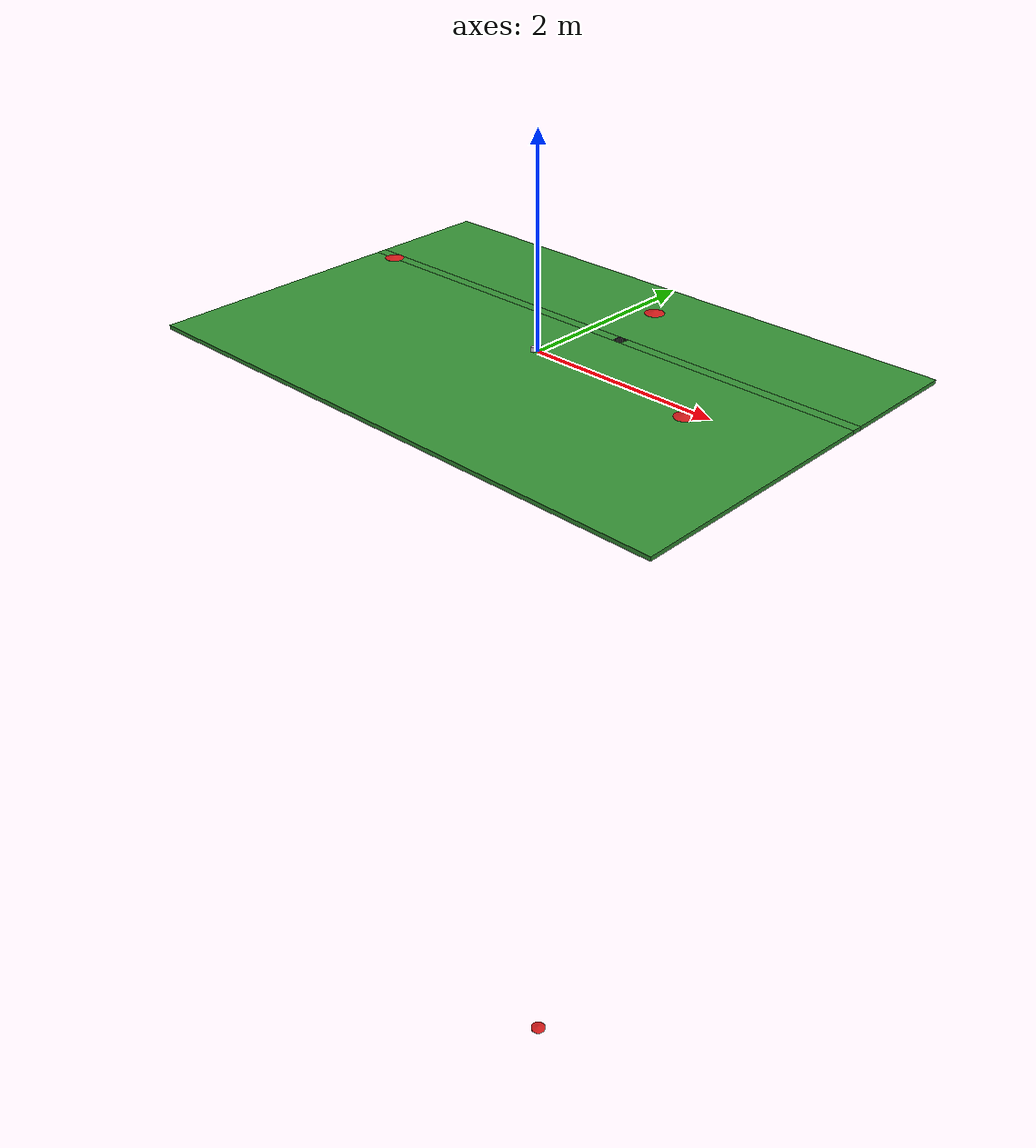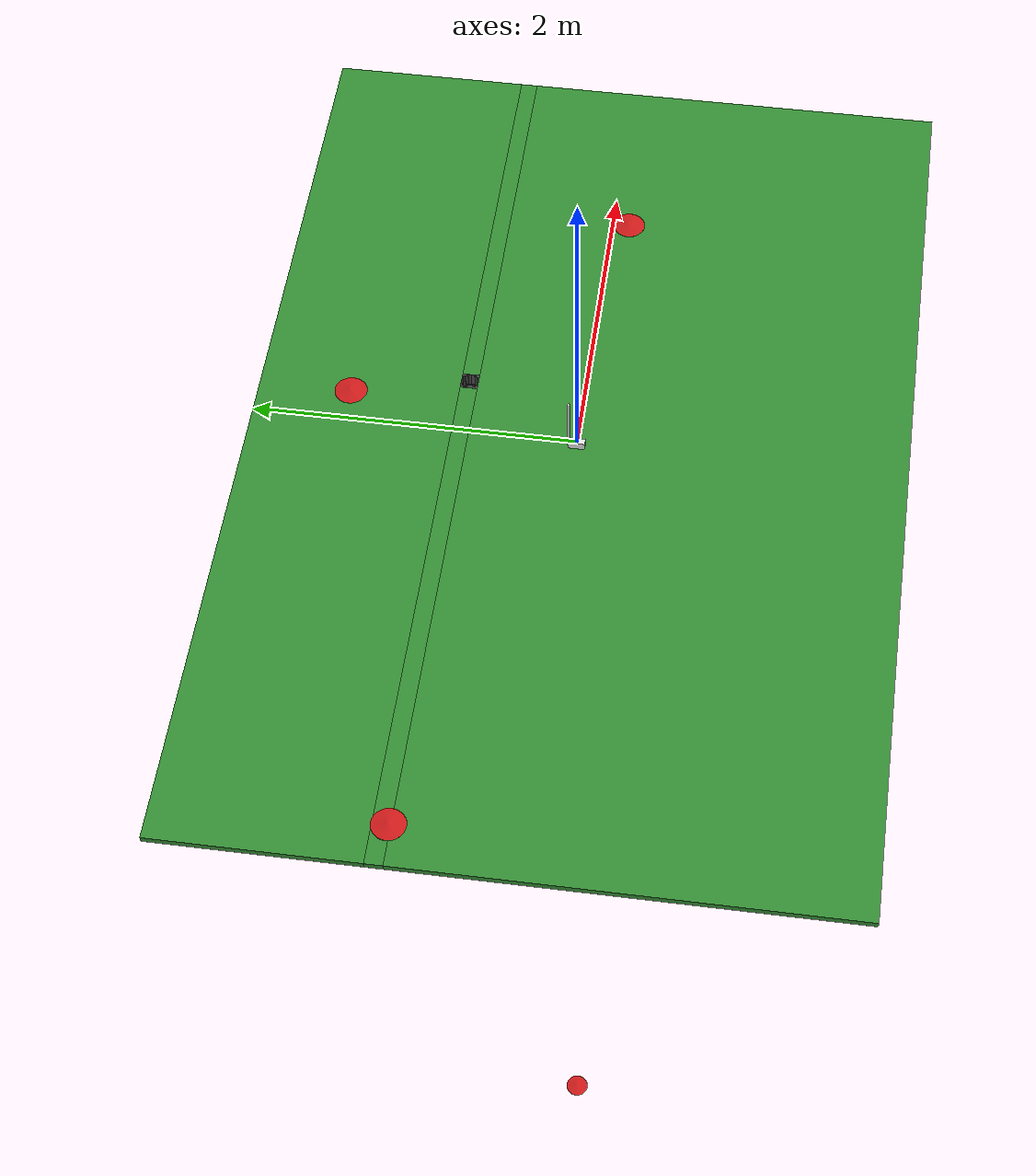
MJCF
<mujoco model="golf_world">
  <compiler angle="radian"/>

  <option integrator="RK4"/>

  <default>
    <geom condim="6" friction="0.2 0.001 0.0014" solref="0.002" solimp="0.95 0.99"/>
  </default>

  <asset>
    <texture type="2d" colorspace="auto" name="checks" builtin="checker" mark="cross" rgb1="1 1 1" rgb2="0 0 0" markrgb="1 0 0" width="512" height="512"/>
    <material name="green_mat" rgba="0.2 0.55 0.2 1"/>
    <material name="green_mat_out" rgba="0.5 0.5 0.5 1"/>
    <material name="green_mat_out1" rgba="0 0.5 0.5 1"/>
    <material name="green_mat_out2" rgba="0.5 0 0.5 1"/>
    <material name="cup_mat" rgba="0.3 0.3 0.3 1"/>
    <material name="ball_mat" texture="checks"/>
    <material name="club_mat" rgba="0.9 0.9 0.9 1"/>
    <material name="disc_mat" rgba="0.8 0.1 0.1 1"/>
    <mesh name="cup_w00" file="assets/golf_hole_obj/golf_hole_obj_collision_0.obj" scale="0.01 0.01 0.01"/>
    <mesh name="cup_w01" file="assets/golf_hole_obj/golf_hole_obj_collision_1.obj" scale="0.01 0.01 0.01"/>
    <mesh name="cup_w02" file="assets/golf_hole_obj/golf_hole_obj_collision_2.obj" scale="0.01 0.01 0.01"/>
    <mesh name="cup_w03" file="assets/golf_hole_obj/golf_hole_obj_collision_3.obj" scale="0.01 0.01 0.01"/>
    <mesh name="cup_w04" file="assets/golf_hole_obj/golf_hole_obj_collision_4.obj" scale="0.01 0.01 0.01"/>
    <mesh name="cup_w05" file="assets/golf_hole_obj/golf_hole_obj_collision_5.obj" scale="0.01 0.01 0.01"/>
    <mesh name="cup_w06" file="assets/golf_hole_obj/golf_hole_obj_collision_6.obj" scale="0.01 0.01 0.01"/>
    <mesh name="cup_w07" file="assets/golf_hole_obj/golf_hole_obj_collision_7.obj" scale="0.01 0.01 0.01"/>
    <mesh name="cup_w08" file="assets/golf_hole_obj/golf_hole_obj_collision_8.obj" scale="0.01 0.01 0.01"/>
    <mesh name="cup_w09" file="assets/golf_hole_obj/golf_hole_obj_collision_9.obj" scale="0.01 0.01 0.01"/>
    <mesh name="cup_w10" file="assets/golf_hole_obj/golf_hole_obj_collision_10.obj" scale="0.01 0.01 0.01"/>
    <mesh name="cup_w11" file="assets/golf_hole_obj/golf_hole_obj_collision_11.obj" scale="0.01 0.01 0.01"/>
    <mesh name="cup_w12" file="assets/golf_hole_obj/golf_hole_obj_collision_12.obj" scale="0.01 0.01 0.01"/>
    <mesh name="cup_w13" file="assets/golf_hole_obj/golf_hole_obj_collision_13.obj" scale="0.01 0.01 0.01"/>
    <mesh name="cup_w14" file="assets/golf_hole_obj/golf_hole_obj_collision_14.obj" scale="0.01 0.01 0.01"/>
    <mesh name="cup_w15" file="assets/golf_hole_obj/golf_hole_obj_collision_15.obj" scale="0.01 0.01 0.01"/>
    <mesh name="cup_w16" file="assets/golf_hole_obj/golf_hole_obj_collision_16.obj" scale="0.01 0.01 0.01"/>
    <mesh name="cup_w17" file="assets/golf_hole_obj/golf_hole_obj_collision_17.obj" scale="0.01 0.01 0.01"/>
    <mesh name="cup_w18" file="assets/golf_hole_obj/golf_hole_obj_collision_18.obj" scale="0.01 0.01 0.01"/>
    <mesh name="cup_w19" file="assets/golf_hole_obj/golf_hole_obj_collision_19.obj" scale="0.01 0.01 0.01"/>
    <mesh name="cup_w20" file="assets/golf_hole_obj/golf_hole_obj_collision_20.obj" scale="0.01 0.01 0.01"/>
    <mesh name="cup_w21" file="assets/golf_hole_obj/golf_hole_obj_collision_21.obj" scale="0.01 0.01 0.01"/>
    <mesh name="cup_w22" file="assets/golf_hole_obj/golf_hole_obj_collision_22.obj" scale="0.01 0.01 0.01"/>
    <mesh name="cup_w23" file="assets/golf_hole_obj/golf_hole_obj_collision_23.obj" scale="0.01 0.01 0.01"/>
    <mesh name="cup_w24" file="assets/golf_hole_obj/golf_hole_obj_collision_24.obj" scale="0.01 0.01 0.01"/>
    <mesh name="cup_w25" file="assets/golf_hole_obj/golf_hole_obj_collision_25.obj" scale="0.01 0.01 0.01"/>
    <mesh name="cup_w26" file="assets/golf_hole_obj/golf_hole_obj_collision_26.obj" scale="0.01 0.01 0.01"/>
    <mesh name="disc_obs" file="assets/disc_obstacle.stl" scale="0.001 0.001 0.001"/>
  </asset>

  <worldbody>
    <geom name="green_plus_y" size="3 0.614434 0.02" pos="0 1.38557 -0.02" type="box" material="green_mat"/>
    <geom name="green_neg_y" size="3 1.33257 0.02" pos="0 -0.667434 -0.02" type="box" material="green_mat"/>
    <geom name="green_plus_x" size="1.27949 0.053 0.02" pos="1.72051 0.718132 -0.02" type="box" material="green_mat"/>
    <geom name="green_neg_x" size="1.66751 0.053 0.02" pos="-1.33249 0.718132 -0.02" type="box" material="green_mat"/>
    <camera name="overview" pos="2 -3 1.5" quat="0.707107 0 0.707107 0"/>
    <body name="cup" pos="0.388026 0.718132 -0.110665">
      <geom type="mesh" material="cup_mat" mesh="cup_w00"/>
      <geom type="mesh" material="cup_mat" mesh="cup_w01"/>
      <geom type="mesh" material="cup_mat" mesh="cup_w02"/>
      <geom type="mesh" material="cup_mat" mesh="cup_w03"/>
      <geom type="mesh" material="cup_mat" mesh="cup_w04"/>
      <geom type="mesh" material="cup_mat" mesh="cup_w05"/>
      <geom type="mesh" material="cup_mat" mesh="cup_w06"/>
      <geom type="mesh" material="cup_mat" mesh="cup_w07"/>
      <geom type="mesh" material="cup_mat" mesh="cup_w08"/>
      <geom type="mesh" material="cup_mat" mesh="cup_w09"/>
      <geom type="mesh" material="cup_mat" mesh="cup_w10"/>
      <geom type="mesh" material="cup_mat" mesh="cup_w11"/>
      <geom type="mesh" material="cup_mat" mesh="cup_w12"/>
      <geom type="mesh" material="cup_mat" mesh="cup_w13"/>
      <geom type="mesh" material="cup_mat" mesh="cup_w14"/>
      <geom type="mesh" material="cup_mat" mesh="cup_w15"/>
      <geom type="mesh" material="cup_mat" mesh="cup_w16"/>
      <geom type="mesh" material="cup_mat" mesh="cup_w17"/>
      <geom type="mesh" material="cup_mat" mesh="cup_w18"/>
      <geom type="mesh" material="cup_mat" mesh="cup_w19"/>
      <geom type="mesh" material="cup_mat" mesh="cup_w20"/>
      <geom type="mesh" material="cup_mat" mesh="cup_w21"/>
      <geom type="mesh" material="cup_mat" mesh="cup_w22"/>
      <geom type="mesh" material="cup_mat" mesh="cup_w23"/>
      <geom type="mesh" material="cup_mat" mesh="cup_w24"/>
      <geom type="mesh" material="cup_mat" mesh="cup_w25"/>
      <geom type="mesh" material="cup_mat" mesh="cup_w26"/>
      <site name="hole_center" pos="0 0 0" size="0.055" rgba="0 0 0 0.2"/>
    </body>
    <body name="disc0" pos="0.221386 1.43134 0">
      <geom type="mesh" material="disc_mat" mesh="disc_obs"/>
    </body>
    <body name="disc1" pos="1.8085 -0.103086 0">
      <geom type="mesh" material="disc_mat" mesh="disc_obs"/>
    </body>
    <body name="disc2" pos="-2.74583 0.67771 0">
      <geom type="mesh" material="disc_mat" mesh="disc_obs"/>
    </body>
    <body name="disc3" pos="0 0 -10">
      <geom type="mesh" material="disc_mat" mesh="disc_obs"/>
    </body>
    <body name="disc4" pos="0 0 -10">
      <geom type="mesh" material="disc_mat" mesh="disc_obs"/>
    </body>
    <body name="ball" pos="0 0 0.021355">
      <joint name="ball_free" type="free"/>
      <geom name="ball_geom" size="0.02135" mass="0.04593" material="ball_mat" rgba="0.6 0.2 0.6 1"/>
    </body>
    <body name="club_mount">
      <joint name="mount_free" type="free" damping="20"/>
      <geom name="mount_inert" size="0.1" contype="0" conaffinity="0" mass="5" rgba="0 0 0 0"/>
      <body name="club_offset" pos="-0.03 0.05 0.37865">
        <body name="club_link">
          <joint name="club_hinge" pos="0 0 0" axis="0 1 0" limited="true" range="-1.0472 1.0472" damping="0.1"/>
          <geom name="club_shaft" size="0.01 0.18" pos="0 0 -0.18" type="capsule" mass="1" material="club_mat"/>
          <geom name="club_head" size="0.02 0.05 0.03" pos="0 -0.05 -0.36" type="box" mass="0.5" material="club_mat"/>
        </body>
      </body>
    </body>
  </worldbody>

  <contact>
    <pair geom1="ball_geom" geom2="club_head" solref="0.02 0.26" solimp="0.7 0.95 0.01"/>
  </contact>

  <actuator>
    <general name="club_motor" joint="club_hinge" ctrlrange="-20 20" forcerange="-40 40" biastype="affine" gainprm="100" biasprm="0 0 -100"/>
  </actuator>
</mujoco>
